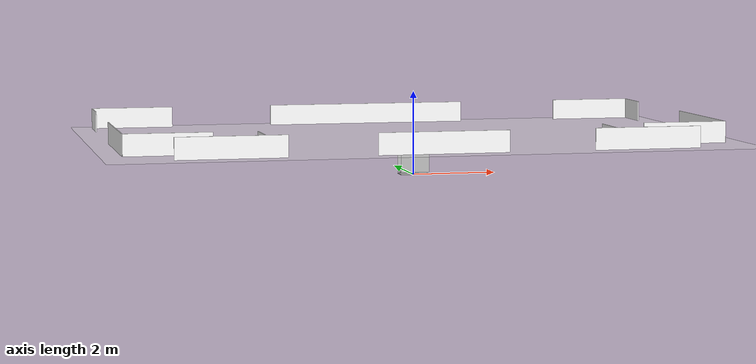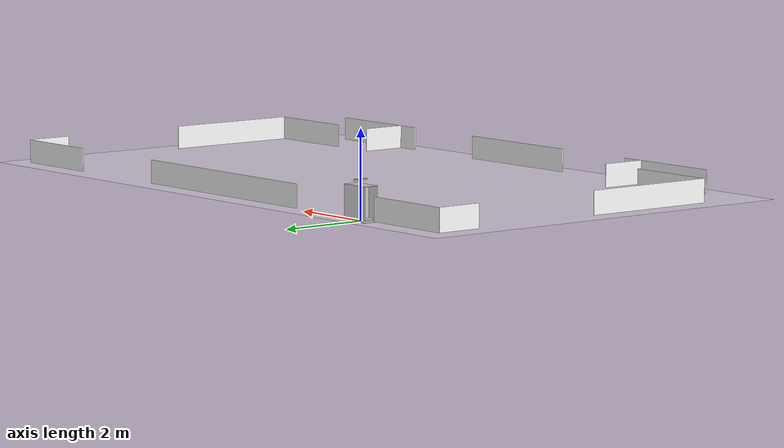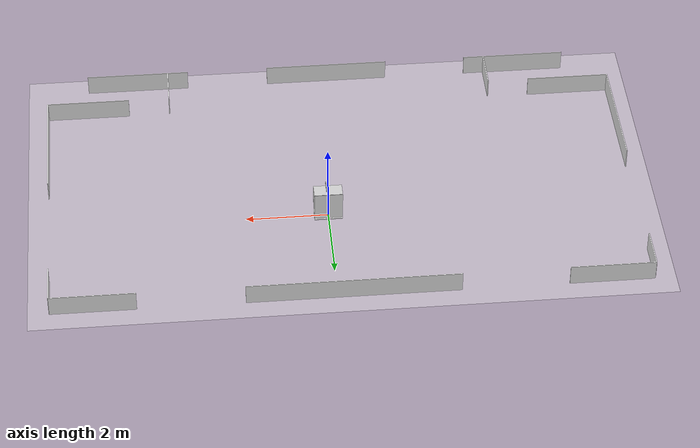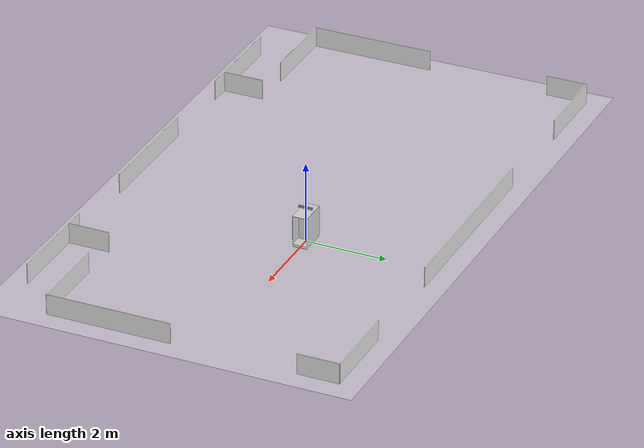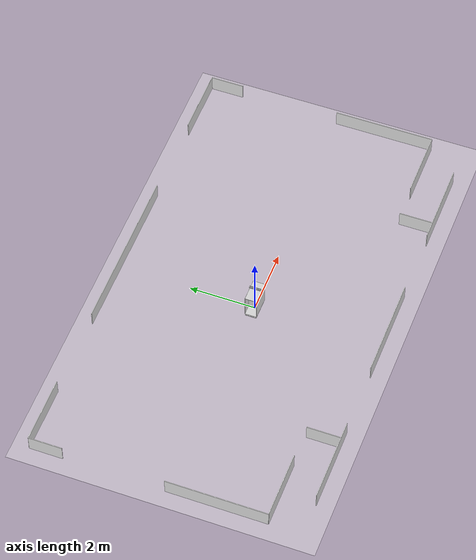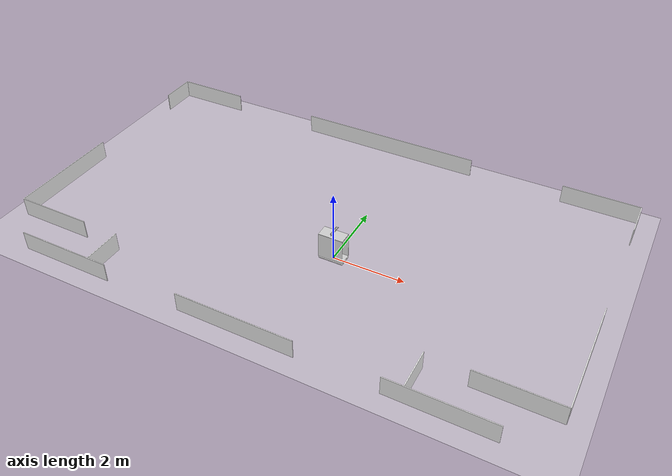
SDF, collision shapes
<?xml version="1.0" ?>
<sdf version="1.8">
  <model name="mps_ring">
    <static>true</static>
    <link name="body">
      <pose>0 0 0.01 0 0 0</pose>
      <gravity>true</gravity>
      <inertial>
	<pose>0 0 0.005 0 0 0</pose>
        <mass>50</mass>
        <inertia>
	  <!-- according to http://en.wikipedia.org/wiki/List_of_moments_of_inertia for a solid box of width: 0.35, height:0.7, depth: 0.7, mass m=30 -->
          <ixx>2.45</ixx>
          <ixy>0.0</ixy>
          <ixz>0.0</ixz>
          <iyy>1.53125</iyy>
          <iyz>0.0</iyz>
          <izz>1.53125</izz>
        </inertia>
      </inertial>
      <visual name="body-visual">
        <pose>-0.35 .172 0 0 0 1.57</pose>
        <geometry>
          <mesh>
            <uri>model://mps_ring/meshes/mps_ring_full.dae</uri>
          </mesh>
        </geometry>
        <cast_shadows>false</cast_shadows>
      </visual>

      <!-- Collision Elements: -->
      <collision name="collision_conveyor_belt">
        <pose>0.025 0 0.88 0 0 0 </pose>
        <geometry>
	  <box>
	    <size>0.03 0.35 0.04</size>
          </box>
        </geometry>
        <surface>
          <contact>
            <ode>
              <min_depth>0.01</min_depth>
            </ode>
          </contact>
        </surface>
      </collision>
      <collision name="collision_conveyor_belt_border_west">
        <pose>0 0 0.9 0 0 0 </pose>
        <geometry>
	  <box>
	    <size>0.01 0.35 0.02</size>
          </box>
        </geometry>
        <surface>
          <contact>
            <ode>
              <min_depth>0.01</min_depth>
            </ode>
          </contact>
        </surface>
      </collision>
      <collision name="collision_conveyor_belt_border_east">
        <pose>0.05 0 0.9 0 0 0 </pose>
        <geometry>
	  <box>
	    <size>0.01 0.35 0.02</size>
          </box>
        </geometry>
        <surface>
          <contact>
            <ode>
              <min_depth>0.01</min_depth>
            </ode>
          </contact>
        </surface>
      </collision>

      <!-- Box -->
      <collision name="collision_base_box_ground">
        <pose>0 0 0.06 0 0 0 </pose>
        <geometry>
	  <box>
	    <size>0.69 0.35 0.01</size>
          </box>
        </geometry>
        <surface>
          <contact>
            <ode>
              <min_depth>0.01</min_depth>
            </ode>
          </contact>
        </surface>
      </collision>
      <collision name="collision_base_box_wall_south">
        <pose>0 -0.175 0.42 0 0 0 </pose>
        <geometry>
	  <box>
	    <size>0.69 0.01 0.72</size>
          </box>
        </geometry>
        <surface>
          <contact>
            <ode>
              <min_depth>0.01</min_depth>
            </ode>
          </contact>
        </surface>
      </collision>
      <collision name="collision_base_box_wall_north">
        <pose>0 0.175 0.42 0 0 0 </pose>
        <geometry>
	  <box>
	    <size>0.69 0.01 0.72</size>
          </box>
        </geometry>
        <surface>
          <contact>
            <ode>
              <min_depth>0.01</min_depth>
            </ode>
          </contact>
        </surface>
      </collision>
      <!-- On both ends of the mps are transparent walls a laser sensor can look through, in the middle are solid walls -->
      <collision name="collision_base_box_wall_middle_1">
        <pose>-0.035 0 0.42 0 0 0 </pose>
        <geometry>
	  <box>
	    <size>0.01 0.35 0.72</size>
          </box>
        </geometry>
        <surface>
          <contact>
            <ode>
              <min_depth>0.01</min_depth>
            </ode>
          </contact>
        </surface>
      </collision>
      <collision name="collision_base_box_wall_middle_2">
        <pose>0.035 0 0.42 0 0 0 </pose>
        <geometry>
	  <box>
	    <size>0.01 0.35 0.72</size>
          </box>
        </geometry>
        <surface>
          <contact>
            <ode>
              <min_depth>0.01</min_depth>
            </ode>
          </contact>
        </surface>
      </collision>
      <collision name="collision_base_box_top">
        <pose>0 0 0.78 0 0 0 </pose>
        <geometry>
	  <box>
	    <size>0.69 0.35 0.01</size>
          </box>
        </geometry>
        <surface>
          <contact>
            <ode>
              <min_depth>0.01</min_depth>
            </ode>
          </contact>
        </surface>
      </collision>
      <collision name="collision_wheels">
	<!-- Collision to avoid that the box falls down (In reality done by wheels) -->
        <pose>0 0 0.01 0 0 0 </pose>
        <geometry>
	  <box>
	    <size>0.69 0.35 0.02</size>
          </box>
        </geometry>
        <surface>
          <contact>
            <ode>
              <min_depth>0.01</min_depth>
            </ode>
          </contact>
        </surface>
      </collision>
      <visual name="base_0">
        <cast_shadows>false</cast_shadows>
        <geometry>
          <sphere>
            <radius>0.05</radius>
          </sphere>
        </geometry>
      </visual>
      <visual name="base_1">
        <cast_shadows>false</cast_shadows>
        <geometry>
          <sphere>
            <radius>0.05</radius>
          </sphere>
        </geometry>
      </visual>
      <visual name="base_2">
        <cast_shadows>false</cast_shadows>
        <geometry>
          <sphere>
            <radius>0.05</radius>
          </sphere>
        </geometry>
      </visual>
    </link>

    <include>
      <name>light_signals</name>
      <uri>model://light_signals/model.sdf</uri>
      <pose>-0.2905 -0.113 0.915 0 0 0</pose>
    </include>

    <link name="mps_tag_output">
      <pose>0.025 -0.175 0.54 0 0 -1.57</pose>
    </link>
    <link name="mps_tag_input">
      <pose>0.025 0.175 0.54 0 0 1.57</pose>
    </link>

    <joint name="mps_light_joint" type="revolute">
      <parent>body</parent>
      <child>light_signals::link</child>
      <axis>
        <limit>
          <lower>0</lower>
          <upper>0</upper>
        </limit>
        <xyz>0 0 1</xyz>
      </axis>
    </joint>

    <!-- Plugin to control the MPS and detect workpieces -->
  </model>
</sdf>

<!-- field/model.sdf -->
<sdf version="1.5">
  <model name="Logistics League Field 2017">
    <pose>0 4 0 0 0 0</pose>
    <static>true</static>
    <link name="field">
      <pose>0 0 0.01 0 0 0</pose>
      <collision name="collision">
        <geometry>
          <plane>
            <normal>0 0 1</normal>
            <size>15 9</size>
          </plane>
        </geometry>
        <surface>
          <friction>
            <ode>
              <mu>100</mu>
              <mu2>50</mu2>
            </ode>
          </friction>
        </surface>
      </collision>
      <visual name="carpet">
        <cast_shadows>false</cast_shadows>
        <geometry>
          <plane>
            <normal>0 0 1</normal>
            <size>15 9</size>
          </plane>
        </geometry>
        <material>
	  <ambient>1 1 1 1</ambient>
	  <diffuse>1 1 1 1</diffuse>
	  <specular>0.2 0.2 0.2 1.0</specular>
	</material>
      </visual>
    </link>

    <link name="wall_bottom_middle_left_down">
      <pose>-4 -3.5 0.25 0 0 0</pose>
      <visual name="wall_bottom_middle_left_down-visual">
        <geometry>
          <box>
            <size>.02 1 .5</size>
          </box>
        </geometry>
        <cast_shadows>false</cast_shadows>
        <material>
	  <ambient>1 1 1 1</ambient>
	  <diffuse>1 1 1 1</diffuse>
	  <specular>0.2 0.2 0.2 1.0</specular>
	</material>
      </visual>
      <collision name="wall_bottom_middle_left_down-collision">
        <geometry>
          <box>
            <size>.02 1 .5</size>
          </box>
        </geometry>
      </collision>
    </link>

    <link name="wall_bottom_middle_left_outer">
      <pose>-4.75 -4 0.25 0 0 1.570796327</pose>
      <visual name="wall_bottom_middle_left_outer-visual">
        <geometry>
          <box>
            <size>.02 2.5 .5</size>
          </box>
        </geometry>
        <cast_shadows>false</cast_shadows>
        <material>
	  <ambient>1 1 1 1</ambient>
	  <diffuse>1 1 1 1</diffuse>
	  <specular>0.2 0.2 0.2 1.0</specular>
	</material>
      </visual>
      <collision name="wall_bottom_middle_left_outer-collision">
        <geometry>
          <box>
            <size>.02 2.5 .5</size>
          </box>
        </geometry>
      </collision>
    </link>

    <link name="wall_bottom_left">
      <pose>-6 -3 0.25 0 0 1.570796327</pose>
      <visual name="wall_bottom_left-visual">
        <geometry>
          <box>
            <size>.02 2 .5</size>
          </box>
        </geometry>
        <cast_shadows>false</cast_shadows>
        <material>
	  <ambient>1 1 1 1</ambient>
	  <diffuse>1 1 1 1</diffuse>
	  <specular>0.2 0.2 0.2 1.0</specular>
	</material>
      </visual>
      <collision name="wall_bottom_left-collision">
        <geometry>
          <box>
            <size>.02 2 .5</size>
          </box>
        </geometry>
      </collision>
    </link>

    <link name="wall_bottom_middle">
      <pose>0 -4 0.25 0 0 1.570796327</pose>
      <visual name="wall_bottom_middle_right-visual">
        <geometry>
          <box>
            <size>.02 3 .5</size>
          </box>
        </geometry>
        <cast_shadows>false</cast_shadows>
        <material>
	  <ambient>1 1 1 1</ambient>
	  <diffuse>1 1 1 1</diffuse>
	  <specular>0.2 0.2 0.2 1.0</specular>
	</material>
      </visual>
      <collision name="wall_bottom_middle_right-collision">
        <geometry>
          <box>
            <size>.02 3 .5</size>
          </box>
        </geometry>
      </collision>
    </link>

    <link name="wall_bottom_middle_right_down">
      <pose>4 -3.5 0.25 0 0 0</pose>
      <visual name="wall_bottom_middle_right_down-visual">
        <geometry>
          <box>
            <size>.02 1 .5</size>
          </box>
        </geometry>
        <cast_shadows>false</cast_shadows>
        <material>
	  <ambient>1 1 1 1</ambient>
	  <diffuse>1 1 1 1</diffuse>
	  <specular>0.2 0.2 0.2 1.0</specular>
	</material>
      </visual>
      <collision name="wall_bottom_middle_right_down-collision">
        <geometry>
          <box>
            <size>.02 1 .5</size>
          </box>
        </geometry>
      </collision>
    </link>

    <link name="wall_bottom_middle_right_outer">
      <pose>4.75 -4 0.25 0 0 1.570796327</pose>
      <visual name="wall_bottom_middle_right_outer-visual">
        <geometry>
          <box>
            <size>.02 2.5 .5</size>
          </box>
        </geometry>
        <cast_shadows>false</cast_shadows>
        <material>
	  <ambient>1 1 1 1</ambient>
	  <diffuse>1 1 1 1</diffuse>
	  <specular>0.2 0.2 0.2 1.0</specular>
	</material>
      </visual>
      <collision name="wall_bottom_middle_right_outer-collision">
        <geometry>
          <box>
            <size>.02 2.5 .5</size>
          </box>
        </geometry>
      </collision>
    </link>

    <link name="wall_bottom_right">
      <pose>6 -3 0.25 0 0 1.570796327</pose>
      <visual name="wall_bottom_right-visual">
        <geometry>
          <box>
            <size>.02 2 .5</size>
          </box>
        </geometry>
        <cast_shadows>false</cast_shadows>
        <material>
	  <ambient>1 1 1 1</ambient>
	  <diffuse>1 1 1 1</diffuse>
	  <specular>0.2 0.2 0.2 1.0</specular>
	</material>
      </visual>
      <collision name="wall_bottom_right-collision">
        <geometry>
          <box>
            <size>.02 2 .5</size>
          </box>
        </geometry>
      </collision>
    </link>

    <link name="wall_left_bottom">
      <pose>-7 -1.5 0.25 0 0 0</pose>
      <visual name="wall_left_bottom-visual">
        <geometry>
          <box>
            <size>.02 3 .5</size>
          </box>
        </geometry>
        <cast_shadows>false</cast_shadows>
        <material>
	  <ambient>1 1 1 1</ambient>
	  <diffuse>1 1 1 1</diffuse>
	  <specular>0.2 0.2 0.2 1.0</specular>
	</material>
      </visual>
      <collision name="wall_left_bottom-collision">
        <geometry>
          <box>
            <size>.02 3 .5</size>
          </box>
        </geometry>
      </collision>
    </link>

    <link name="wall_left_top">
      <pose>-7 3.5 0.25 0 0 0</pose>
      <visual name="wall_left_top-visual">
        <geometry>
          <box>
            <size>.02 1 .5</size>
          </box>
        </geometry>
        <cast_shadows>false</cast_shadows>
        <material>
	  <ambient>1 1 1 1</ambient>
	  <diffuse>1 1 1 1</diffuse>
	  <specular>0.2 0.2 0.2 1.0</specular>
	</material>
      </visual>
      <collision name="wall_left_top-collision">
        <geometry>
          <box>
            <size>.02 1 .5</size>
          </box>
        </geometry>
      </collision>
    </link>

    <link name="wall_right_bottom">
      <pose>7 -1.5 0.25 0 0 0</pose>
      <visual name="wall_right_bottom-visual">
        <geometry>
          <box>
            <size>.02 3 .5</size>
          </box>
        </geometry>
        <cast_shadows>false</cast_shadows>
        <material>
	  <ambient>1 1 1 1</ambient>
	  <diffuse>1 1 1 1</diffuse>
	  <specular>0.2 0.2 0.2 1.0</specular>
	</material>
      </visual>
      <collision name="wall_right_bottom-collision">
        <geometry>
          <box>
            <size>.02 3 .5</size>
          </box>
        </geometry>
      </collision>
    </link>

    <link name="wall_right_top">
      <pose>7 3.5 0.25 0 0 0</pose>
      <visual name="wall_right_top-visual">
        <geometry>
          <box>
            <size>.02 1 .5</size>
          </box>
        </geometry>
        <cast_shadows>false</cast_shadows>
        <material>
	  <ambient>1 1 1 1</ambient>
	  <diffuse>1 1 1 1</diffuse>
	  <specular>0.2 0.2 0.2 1.0</specular>
	</material>
      </visual>
      <collision name="wall_right_top-collision">
        <geometry>
          <box>
            <size>.02 1 .5</size>
          </box>
        </geometry>
      </collision>
    </link>

    <link name="wall_top_middle">
      <pose>0 4 0.25 0 0 1.570796327</pose>
      <visual name="wall_top_middle-visual">
        <geometry>
          <box>
            <size>.02 5 .5</size>
          </box>
        </geometry>
        <cast_shadows>false</cast_shadows>
        <material>
	  <ambient>1 1 1 1</ambient>
	  <diffuse>1 1 1 1</diffuse>
	  <specular>0.2 0.2 0.2 1.0</specular>
	</material>
      </visual>
      <collision name="wall_top_middle-collision">
        <geometry>
          <box>
            <size>.02 5 .5</size>
          </box>
        </geometry>
      </collision>
    </link>

    <link name="wall_top_left">
      <pose>-6 4 0.25 0 0 1.570796327</pose>
      <visual name="wall_top_left-visual">
        <geometry>
          <box>
            <size>.02 2 .5</size>
          </box>
        </geometry>
        <cast_shadows>false</cast_shadows>
        <material>
	  <ambient>1 1 1 1</ambient>
	  <diffuse>1 1 1 1</diffuse>
	  <specular>0.2 0.2 0.2 1.0</specular>
	</material>
      </visual>
      <collision name="wall_top_left-collision">
        <geometry>
          <box>
            <size>.02 2 .5</size>
          </box>
        </geometry>
      </collision>
    </link>

    <link name="wall_top_right">
      <pose>6 4 0.25 0 0 1.570796327</pose>
      <visual name="wall_top_right-visual">
        <geometry>
          <box>
             <size>.02 2 .5</size>
          </box>
        </geometry>
        <cast_shadows>false</cast_shadows>
        <material>
	  <ambient>1 1 1 1</ambient>
	  <diffuse>1 1 1 1</diffuse>
	  <specular>0.2 0.2 0.2 1.0</specular>
	</material>
      </visual>
      <collision name="wall_top_right-collision">
        <geometry>
          <box>
            <size>.02 2 .5</size>
          </box>
        </geometry>
      </collision>
    </link>

  </model>
</sdf>
